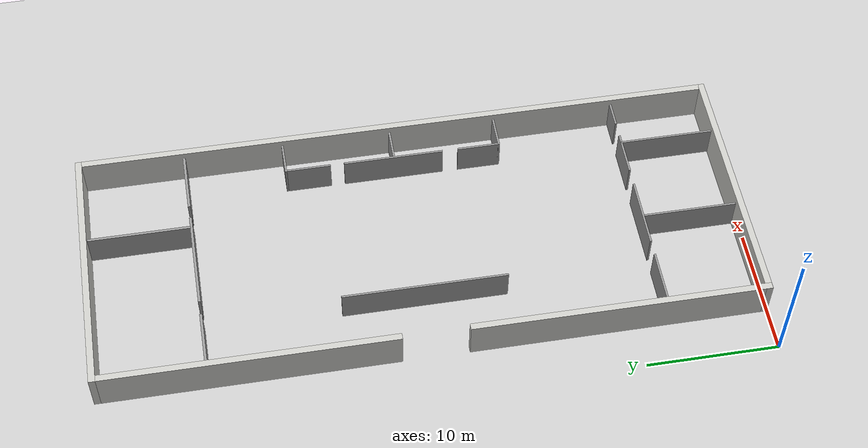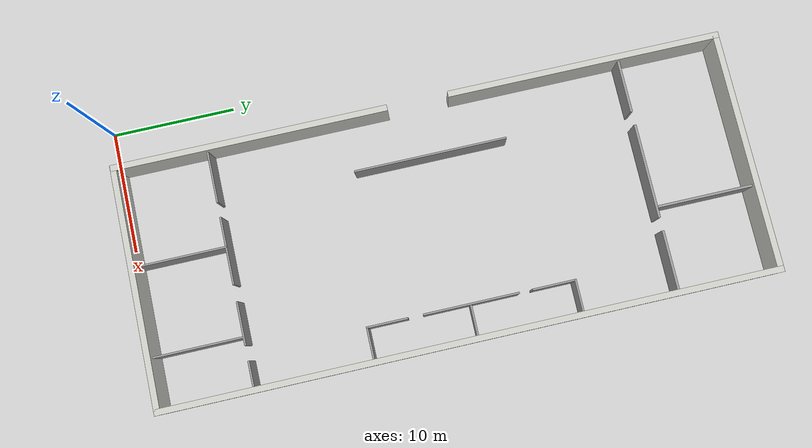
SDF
<sdf version="1.6">
 <world name="default">
  <model name="ground_plane">
   <static>1</static>
   <link name="link">
    <collision name="collision">
     <geometry><plane><normal>0 0 1</normal><size>100 100</size></plane></geometry>
     <surface><friction><ode><mu>100</mu><mu2>50</mu2></ode></friction></surface>
    </collision>
    <visual name="visual">
     <cast_shadows>0</cast_shadows>
     <geometry><plane><normal>0 0 1</normal><size>100 100</size></plane></geometry>
     <material>
      <script><uri>file://media/materials/scripts/gazebo.material</uri><name>Gazebo/Grey</name></script>
     </material>
    </visual>
   </link>
  </model>
  <model name="office_clone">
   <link name="Wall_1">
    <pose>-24.75 -3e-06 0 0 0 -1.5708</pose>
    <inertial>
     <mass>1</mass>
     <inertia><ixx>1</ixx><ixy>0</ixy><ixz>0</ixz><iyy>1</iyy><iyz>0</iyz><izz>1</izz></inertia>
    </inertial>
    <visual name="Wall_1_Visual">
     <pose>0 0 1.25 0 -0 0</pose>
     <geometry><box><size>20 0.5 3.5</size></box></geometry>
     <material>
      <script><uri>file://media/materials/scripts/gazebo.material</uri><name>Gazebo/CeilingTiled</name></script>
      <ambient>1 1 1 1</ambient>
      <shader type="vertex"><normal_map>__default__</normal_map></shader>
      <diffuse>1 1 1 1</diffuse>
      <specular>0 0 0 1</specular>
      <emissive>0 0 0 1</emissive>
     </material>
     <meta><layer>0</layer></meta>
    </visual>
    <collision name="Wall_1_Collision">
     <pose>0 0 1.25 0 -0 0</pose>
     <geometry><box><size>20 0.5 3.5</size></box></geometry>
     <surface>
      <friction>
       <ode><mu>1</mu><mu2>1</mu2><fdir1>0 0 0</fdir1><slip1>0</slip1><slip2>0</slip2></ode>
       <torsional>
        <coefficient>1</coefficient>
        <patch_radius>0</patch_radius>
        <surface_radius>0</surface_radius>
        <use_patch_radius>1</use_patch_radius>
        <ode><slip>0</slip></ode>
       </torsional>
      </friction>
      <bounce><restitution_coefficient>0</restitution_coefficient><threshold>1e+06</threshold></bounce>
      <contact>
       <collide_without_contact>0</collide_without_contact>
       <collide_without_contact_bitmask>1</collide_without_contact_bitmask>
       <collide_bitmask>1</collide_bitmask>
       <ode>
        <soft_cfm>0</soft_cfm>
        <soft_erp>0.2</soft_erp>
        <kp>1e+13</kp>
        <kd>1</kd>
        <max_vel>0.01</max_vel>
        <min_depth>0</min_depth>
       </ode>
       <bullet>
        <split_impulse>1</split_impulse>
        <split_impulse_penetration_threshold>-0.01</split_impulse_penetration_threshold>
        <soft_cfm>0</soft_cfm>
        <soft_erp>0.2</soft_erp>
        <kp>1e+13</kp>
        <kd>1</kd>
       </bullet>
      </contact>
     </surface>
    </collision>
   </link>
   <link name="Wall_11">
    <pose>24.75 3e-06 0 0 0 -1.5708</pose>
    <inertial>
     <mass>1</mass>
     <inertia><ixx>1</ixx><ixy>0</ixy><ixz>0</ixz><iyy>1</iyy><iyz>0</iyz><izz>1</izz></inertia>
    </inertial>
    <visual name="Wall_11_Visual">
     <pose>0 0 1.25 0 -0 0</pose>
     <geometry><box><size>20 0.5 3.5</size></box></geometry>
     <material>
      <script><uri>file://media/materials/scripts/gazebo.material</uri><name>Gazebo/CeilingTiled</name></script>
      <ambient>1 1 1 1</ambient>
      <shader type="vertex"><normal_map>__default__</normal_map></shader>
      <diffuse>1 1 1 1</diffuse>
      <specular>0 0 0 1</specular>
      <emissive>0 0 0 1</emissive>
     </material>
     <meta><layer>0</layer></meta>
    </visual>
    <collision name="Wall_11_Collision">
     <pose>0 0 1.25 0 -0 0</pose>
     <geometry><box><size>20 0.5 3.5</size></box></geometry>
     <surface>
      <friction>
       <ode><mu>1</mu><mu2>1</mu2><fdir1>0 0 0</fdir1><slip1>0</slip1><slip2>0</slip2></ode>
       <torsional>
        <coefficient>1</coefficient>
        <patch_radius>0</patch_radius>
        <surface_radius>0</surface_radius>
        <use_patch_radius>1</use_patch_radius>
        <ode><slip>0</slip></ode>
       </torsional>
      </friction>
      <bounce><restitution_coefficient>0</restitution_coefficient><threshold>1e+06</threshold></bounce>
      <contact>
       <collide_without_contact>0</collide_without_contact>
       <collide_without_contact_bitmask>1</collide_without_contact_bitmask>
       <collide_bitmask>1</collide_bitmask>
       <ode>
        <soft_cfm>0</soft_cfm>
        <soft_erp>0.2</soft_erp>
        <kp>1e+13</kp>
        <kd>1</kd>
        <max_vel>0.01</max_vel>
        <min_depth>0</min_depth>
       </ode>
       <bullet>
        <split_impulse>1</split_impulse>
        <split_impulse_penetration_threshold>-0.01</split_impulse_penetration_threshold>
        <soft_cfm>0</soft_cfm>
        <soft_erp>0.2</soft_erp>
        <kp>1e+13</kp>
        <kd>1</kd>
       </bullet>
      </contact>
     </surface>
    </collision>
   </link>
   <link name="Wall_13">
    <pose>-16.658 7.127 0 0 0 -1.5708</pose>
    <visual name="Wall_13_Visual">
     <pose>0 0 1.25 0 -0 0</pose>
     <geometry><box><size>4.80017 0.2 2.5</size></box></geometry>
     <material>
      <script><uri>file://media/materials/scripts/gazebo.material</uri><name>Gazebo/Grey</name></script>
      <ambient>1 1 1 1</ambient>
     </material>
     <meta><layer>0</layer></meta>
    </visual>
    <collision name="Wall_13_Collision">
     <pose>0 0 1.25 0 -0 0</pose>
     <geometry><box><size>4.80017 0.2 2.5</size></box></geometry>
     <surface>
      <friction>
       <ode><mu>1</mu><mu2>1</mu2><fdir1>0 0 0</fdir1><slip1>0</slip1><slip2>0</slip2></ode>
       <torsional>
        <coefficient>1</coefficient>
        <patch_radius>0</patch_radius>
        <surface_radius>0</surface_radius>
        <use_patch_radius>1</use_patch_radius>
        <ode><slip>0</slip></ode>
       </torsional>
      </friction>
      <bounce><restitution_coefficient>0</restitution_coefficient><threshold>1e+06</threshold></bounce>
      <contact>
       <collide_without_contact>0</collide_without_contact>
       <collide_without_contact_bitmask>1</collide_without_contact_bitmask>
       <collide_bitmask>1</collide_bitmask>
       <ode>
        <soft_cfm>0</soft_cfm>
        <soft_erp>0.2</soft_erp>
        <kp>1e+13</kp>
        <kd>1</kd>
        <max_vel>0.01</max_vel>
        <min_depth>0</min_depth>
       </ode>
       <bullet>
        <split_impulse>1</split_impulse>
        <split_impulse_penetration_threshold>-0.01</split_impulse_penetration_threshold>
        <soft_cfm>0</soft_cfm>
        <soft_erp>0.2</soft_erp>
        <kp>1e+13</kp>
        <kd>1</kd>
       </bullet>
      </contact>
     </surface>
    </collision>
   </link>
   <link name="Wall_15">
    <pose>-16.658 -0.198 0 0 0 -1.5708</pose>
    <visual name="Wall_15_Visual">
     <pose>0 0 1.25 0 -0 0</pose>
     <geometry><box><size>7.75 0.2 2.5</size></box></geometry>
     <material>
      <script><uri>file://media/materials/scripts/gazebo.material</uri><name>Gazebo/Grey</name></script>
      <ambient>1 1 1 1</ambient>
     </material>
     <meta><layer>0</layer></meta>
    </visual>
    <collision name="Wall_15_Collision">
     <pose>0 0 1.25 0 -0 0</pose>
     <geometry><box><size>7.75 0.2 2.5</size></box></geometry>
     <surface>
      <friction>
       <ode><mu>1</mu><mu2>1</mu2><fdir1>0 0 0</fdir1><slip1>0</slip1><slip2>0</slip2></ode>
       <torsional>
        <coefficient>1</coefficient>
        <patch_radius>0</patch_radius>
        <surface_radius>0</surface_radius>
        <use_patch_radius>1</use_patch_radius>
        <ode><slip>0</slip></ode>
       </torsional>
      </friction>
      <bounce><restitution_coefficient>0</restitution_coefficient><threshold>1e+06</threshold></bounce>
      <contact>
       <collide_without_contact>0</collide_without_contact>
       <collide_without_contact_bitmask>1</collide_without_contact_bitmask>
       <collide_bitmask>1</collide_bitmask>
       <ode>
        <soft_cfm>0</soft_cfm>
        <soft_erp>0.2</soft_erp>
        <kp>1e+13</kp>
        <kd>1</kd>
        <max_vel>0.01</max_vel>
        <min_depth>0</min_depth>
       </ode>
       <bullet>
        <split_impulse>1</split_impulse>
        <split_impulse_penetration_threshold>-0.01</split_impulse_penetration_threshold>
        <soft_cfm>0</soft_cfm>
        <soft_erp>0.2</soft_erp>
        <kp>1e+13</kp>
        <kd>1</kd>
       </bullet>
      </contact>
     </surface>
    </collision>
   </link>
   <link name="Wall_17">
    <pose>-16.658 -7.423 0 0 0 -1.5708</pose>
    <visual name="Wall_17_Visual">
     <pose>0 0 1.25 0 -0 0</pose>
     <geometry><box><size>4.5 0.2 2.5</size></box></geometry>
     <material>
      <script><uri>file://media/materials/scripts/gazebo.material</uri><name>Gazebo/Grey</name></script>
      <ambient>1 1 1 1</ambient>
     </material>
     <meta><layer>0</layer></meta>
    </visual>
    <collision name="Wall_17_Collision">
     <pose>0 0 1.25 0 -0 0</pose>
     <geometry><box><size>4.5 0.2 2.5</size></box></geometry>
     <surface>
      <friction>
       <ode><mu>1</mu><mu2>1</mu2><fdir1>0 0 0</fdir1><slip1>0</slip1><slip2>0</slip2></ode>
       <torsional>
        <coefficient>1</coefficient>
        <patch_radius>0</patch_radius>
        <surface_radius>0</surface_radius>
        <use_patch_radius>1</use_patch_radius>
        <ode><slip>0</slip></ode>
       </torsional>
      </friction>
      <bounce><restitution_coefficient>0</restitution_coefficient><threshold>1e+06</threshold></bounce>
      <contact>
       <collide_without_contact>0</collide_without_contact>
       <collide_without_contact_bitmask>1</collide_without_contact_bitmask>
       <collide_bitmask>1</collide_bitmask>
       <ode>
        <soft_cfm>0</soft_cfm>
        <soft_erp>0.2</soft_erp>
        <kp>1e+13</kp>
        <kd>1</kd>
        <max_vel>0.01</max_vel>
        <min_depth>0</min_depth>
       </ode>
       <bullet>
        <split_impulse>1</split_impulse>
        <split_impulse_penetration_threshold>-0.01</split_impulse_penetration_threshold>
        <soft_cfm>0</soft_cfm>
        <soft_erp>0.2</soft_erp>
        <kp>1e+13</kp>
        <kd>1</kd>
       </bullet>
      </contact>
     </surface>
    </collision>
   </link>
   <link name="Wall_19">
    <pose>-20.703 2.792 0 0 -0 0</pose>
    <visual name="Wall_19_Visual">
     <pose>0 0 1.25 0 -0 0</pose>
     <geometry><box><size>8.04985 0.2 2.5</size></box></geometry>
     <material>
      <script><uri>file://media/materials/scripts/gazebo.material</uri><name>Gazebo/Grey</name></script>
      <ambient>1 1 1 1</ambient>
     </material>
     <meta><layer>0</layer></meta>
    </visual>
    <collision name="Wall_19_Collision">
     <pose>0 0 1.25 0 -0 0</pose>
     <geometry><box><size>8.04985 0.2 2.5</size></box></geometry>
     <surface>
      <friction>
       <ode><mu>1</mu><mu2>1</mu2><fdir1>0 0 0</fdir1><slip1>0</slip1><slip2>0</slip2></ode>
       <torsional>
        <coefficient>1</coefficient>
        <patch_radius>0</patch_radius>
        <surface_radius>0</surface_radius>
        <use_patch_radius>1</use_patch_radius>
        <ode><slip>0</slip></ode>
       </torsional>
      </friction>
      <bounce><restitution_coefficient>0</restitution_coefficient><threshold>1e+06</threshold></bounce>
      <contact>
       <collide_without_contact>0</collide_without_contact>
       <collide_without_contact_bitmask>1</collide_without_contact_bitmask>
       <collide_bitmask>1</collide_bitmask>
       <ode>
        <soft_cfm>0</soft_cfm>
        <soft_erp>0.2</soft_erp>
        <kp>1e+13</kp>
        <kd>1</kd>
        <max_vel>0.01</max_vel>
        <min_depth>0</min_depth>
       </ode>
       <bullet>
        <split_impulse>1</split_impulse>
        <split_impulse_penetration_threshold>-0.01</split_impulse_penetration_threshold>
        <soft_cfm>0</soft_cfm>
        <soft_erp>0.2</soft_erp>
        <kp>1e+13</kp>
        <kd>1</kd>
       </bullet>
      </contact>
     </surface>
    </collision>
   </link>
   <link name="Wall_21">
    <pose>17.2839 8.57905 0 0 0 -1.57072</pose>
    <visual name="Wall_21_Visual">
     <pose>0 0 1.25 0 -0 0</pose>
     <geometry><box><size>2.25 0.15 2.5</size></box></geometry>
     <material>
      <script><uri>file://media/materials/scripts/gazebo.material</uri><name>Gazebo/Grey</name></script>
      <ambient>1 1 1 1</ambient>
     </material>
     <meta><layer>0</layer></meta>
    </visual>
    <collision name="Wall_21_Collision">
     <pose>0 0 1.25 0 -0 0</pose>
     <geometry><box><size>2.25 0.15 2.5</size></box></geometry>
     <surface>
      <friction>
       <ode><mu>1</mu><mu2>1</mu2><fdir1>0 0 0</fdir1><slip1>0</slip1><slip2>0</slip2></ode>
       <torsional>
        <coefficient>1</coefficient>
        <patch_radius>0</patch_radius>
        <surface_radius>0</surface_radius>
        <use_patch_radius>1</use_patch_radius>
        <ode><slip>0</slip></ode>
       </torsional>
      </friction>
      <bounce><restitution_coefficient>0</restitution_coefficient><threshold>1e+06</threshold></bounce>
      <contact>
       <collide_without_contact>0</collide_without_contact>
       <collide_without_contact_bitmask>1</collide_without_contact_bitmask>
       <collide_bitmask>1</collide_bitmask>
       <ode>
        <soft_cfm>0</soft_cfm>
        <soft_erp>0.2</soft_erp>
        <kp>1e+13</kp>
        <kd>1</kd>
        <max_vel>0.01</max_vel>
        <min_depth>0</min_depth>
       </ode>
       <bullet>
        <split_impulse>1</split_impulse>
        <split_impulse_penetration_threshold>-0.01</split_impulse_penetration_threshold>
        <soft_cfm>0</soft_cfm>
        <soft_erp>0.2</soft_erp>
        <kp>1e+13</kp>
        <kd>1</kd>
       </bullet>
      </contact>
     </surface>
    </collision>
   </link>
   <link name="Wall_23">
    <pose>17.2838 4.5041 0 0 0 -1.5708</pose>
    <visual name="Wall_23_Visual">
     <pose>0 0 1.25 0 -0 0</pose>
     <geometry><box><size>3.5 0.15 2.5</size></box></geometry>
     <material>
      <script><uri>file://media/materials/scripts/gazebo.material</uri><name>Gazebo/Grey</name></script>
      <ambient>1 1 1 1</ambient>
     </material>
     <meta><layer>0</layer></meta>
    </visual>
    <collision name="Wall_23_Collision">
     <pose>0 0 1.25 0 -0 0</pose>
     <geometry><box><size>3.5 0.15 2.5</size></box></geometry>
     <surface>
      <friction>
       <ode><mu>1</mu><mu2>1</mu2><fdir1>0 0 0</fdir1><slip1>0</slip1><slip2>0</slip2></ode>
       <torsional>
        <coefficient>1</coefficient>
        <patch_radius>0</patch_radius>
        <surface_radius>0</surface_radius>
        <use_patch_radius>1</use_patch_radius>
        <ode><slip>0</slip></ode>
       </torsional>
      </friction>
      <bounce><restitution_coefficient>0</restitution_coefficient><threshold>1e+06</threshold></bounce>
      <contact>
       <collide_without_contact>0</collide_without_contact>
       <collide_without_contact_bitmask>1</collide_without_contact_bitmask>
       <collide_bitmask>1</collide_bitmask>
       <ode>
        <soft_cfm>0</soft_cfm>
        <soft_erp>0.2</soft_erp>
        <kp>1e+13</kp>
        <kd>1</kd>
        <max_vel>0.01</max_vel>
        <min_depth>0</min_depth>
       </ode>
       <bullet>
        <split_impulse>1</split_impulse>
        <split_impulse_penetration_threshold>-0.01</split_impulse_penetration_threshold>
        <soft_cfm>0</soft_cfm>
        <soft_erp>0.2</soft_erp>
        <kp>1e+13</kp>
        <kd>1</kd>
       </bullet>
      </contact>
     </surface>
    </collision>
   </link>
   <link name="Wall_25">
    <pose>17.2838 -1.3459 0 0 0 -1.5708</pose>
    <visual name="Wall_25_Visual">
     <pose>0 0 1.25 0 -0 0</pose>
     <geometry><box><size>5.5 0.15 2.5</size></box></geometry>
     <material>
      <script><uri>file://media/materials/scripts/gazebo.material</uri><name>Gazebo/Grey</name></script>
      <ambient>1 1 1 1</ambient>
     </material>
     <meta><layer>0</layer></meta>
    </visual>
    <collision name="Wall_25_Collision">
     <pose>0 0 1.25 0 -0 0</pose>
     <geometry><box><size>5.5 0.15 2.5</size></box></geometry>
     <surface>
      <friction>
       <ode><mu>1</mu><mu2>1</mu2><fdir1>0 0 0</fdir1><slip1>0</slip1><slip2>0</slip2></ode>
       <torsional>
        <coefficient>1</coefficient>
        <patch_radius>0</patch_radius>
        <surface_radius>0</surface_radius>
        <use_patch_radius>1</use_patch_radius>
        <ode><slip>0</slip></ode>
       </torsional>
      </friction>
      <bounce><restitution_coefficient>0</restitution_coefficient><threshold>1e+06</threshold></bounce>
      <contact>
       <collide_without_contact>0</collide_without_contact>
       <collide_without_contact_bitmask>1</collide_without_contact_bitmask>
       <collide_bitmask>1</collide_bitmask>
       <ode>
        <soft_cfm>0</soft_cfm>
        <soft_erp>0.2</soft_erp>
        <kp>1e+13</kp>
        <kd>1</kd>
        <max_vel>0.01</max_vel>
        <min_depth>0</min_depth>
       </ode>
       <bullet>
        <split_impulse>1</split_impulse>
        <split_impulse_penetration_threshold>-0.01</split_impulse_penetration_threshold>
        <soft_cfm>0</soft_cfm>
        <soft_erp>0.2</soft_erp>
        <kp>1e+13</kp>
        <kd>1</kd>
       </bullet>
      </contact>
     </surface>
    </collision>
   </link>
   <link name="Wall_27">
    <pose>17.2838 -7.4709 0 0 0 -1.5708</pose>
    <visual name="Wall_27_Visual">
     <pose>0 0 1.25 0 -0 0</pose>
     <geometry><box><size>4.35 0.15 2.5</size></box></geometry>
     <material>
      <script><uri>file://media/materials/scripts/gazebo.material</uri><name>Gazebo/Grey</name></script>
      <ambient>1 1 1 1</ambient>
     </material>
     <meta><layer>0</layer></meta>
    </visual>
    <collision name="Wall_27_Collision">
     <pose>0 0 1.25 0 -0 0</pose>
     <geometry><box><size>4.35 0.15 2.5</size></box></geometry>
     <surface>
      <friction>
       <ode><mu>1</mu><mu2>1</mu2><fdir1>0 0 0</fdir1><slip1>0</slip1><slip2>0</slip2></ode>
       <torsional>
        <coefficient>1</coefficient>
        <patch_radius>0</patch_radius>
        <surface_radius>0</surface_radius>
        <use_patch_radius>1</use_patch_radius>
        <ode><slip>0</slip></ode>
       </torsional>
      </friction>
      <bounce><restitution_coefficient>0</restitution_coefficient><threshold>1e+06</threshold></bounce>
      <contact>
       <collide_without_contact>0</collide_without_contact>
       <collide_without_contact_bitmask>1</collide_without_contact_bitmask>
       <collide_bitmask>1</collide_bitmask>
       <ode>
        <soft_cfm>0</soft_cfm>
        <soft_erp>0.2</soft_erp>
        <kp>1e+13</kp>
        <kd>1</kd>
        <max_vel>0.01</max_vel>
        <min_depth>0</min_depth>
       </ode>
       <bullet>
        <split_impulse>1</split_impulse>
        <split_impulse_penetration_threshold>-0.01</split_impulse_penetration_threshold>
        <soft_cfm>0</soft_cfm>
        <soft_erp>0.2</soft_erp>
        <kp>1e+13</kp>
        <kd>1</kd>
       </bullet>
      </contact>
     </surface>
    </collision>
   </link>
   <link name="Wall_29">
    <pose>20.9993 5.58355 0 0 -0 0</pose>
    <visual name="Wall_29_Visual">
     <pose>0 0 1.25 0 -0 0</pose>
     <geometry><box><size>7.5 0.15 2.5</size></box></geometry>
     <material>
      <script><uri>file://media/materials/scripts/gazebo.material</uri><name>Gazebo/Grey</name></script>
      <ambient>1 1 1 1</ambient>
     </material>
     <meta><layer>0</layer></meta>
    </visual>
    <collision name="Wall_29_Collision">
     <pose>0 0 1.25 0 -0 0</pose>
     <geometry><box><size>7.5 0.15 2.5</size></box></geometry>
     <surface>
      <friction>
       <ode><mu>1</mu><mu2>1</mu2><fdir1>0 0 0</fdir1><slip1>0</slip1><slip2>0</slip2></ode>
       <torsional>
        <coefficient>1</coefficient>
        <patch_radius>0</patch_radius>
        <surface_radius>0</surface_radius>
        <use_patch_radius>1</use_patch_radius>
        <ode><slip>0</slip></ode>
       </torsional>
      </friction>
      <bounce><restitution_coefficient>0</restitution_coefficient><threshold>1e+06</threshold></bounce>
      <contact>
       <collide_without_contact>0</collide_without_contact>
       <collide_without_contact_bitmask>1</collide_without_contact_bitmask>
       <collide_bitmask>1</collide_bitmask>
       <ode>
        <soft_cfm>0</soft_cfm>
        <soft_erp>0.2</soft_erp>
        <kp>1e+13</kp>
        <kd>1</kd>
        <max_vel>0.01</max_vel>
        <min_depth>0</min_depth>
       </ode>
       <bullet>
        <split_impulse>1</split_impulse>
        <split_impulse_penetration_threshold>-0.01</split_impulse_penetration_threshold>
        <soft_cfm>0</soft_cfm>
        <soft_erp>0.2</soft_erp>
        <kp>1e+13</kp>
        <kd>1</kd>
       </bullet>
      </contact>
     </surface>
    </collision>
   </link>
   <link name="Wall_3">
    <pose>-1e-06 9.75 0 0 -0 0</pose>
    <inertial>
     <mass>1</mass>
     <inertia><ixx>1</ixx><ixy>0</ixy><ixz>0</ixz><iyy>1</iyy><iyz>0</iyz><izz>1</izz></inertia>
    </inertial>
    <visual name="Wall_3_Visual">
     <pose>0 0 1.25 0 -0 0</pose>
     <geometry><box><size>50 0.5 3.5</size></box></geometry>
     <material>
      <script><uri>file://media/materials/scripts/gazebo.material</uri><name>Gazebo/CeilingTiled</name></script>
      <ambient>1 1 1 1</ambient>
      <shader type="vertex"><normal_map>__default__</normal_map></shader>
      <diffuse>1 1 1 1</diffuse>
      <specular>0 0 0 1</specular>
      <emissive>0 0 0 1</emissive>
     </material>
     <meta><layer>0</layer></meta>
    </visual>
    <collision name="Wall_3_Collision">
     <pose>0 0 1.25 0 -0 0</pose>
     <geometry><box><size>50 0.5 3.5</size></box></geometry>
     <surface>
      <friction>
       <ode><mu>1</mu><mu2>1</mu2><fdir1>0 0 0</fdir1><slip1>0</slip1><slip2>0</slip2></ode>
       <torsional>
        <coefficient>1</coefficient>
        <patch_radius>0</patch_radius>
        <surface_radius>0</surface_radius>
        <use_patch_radius>1</use_patch_radius>
        <ode><slip>0</slip></ode>
       </torsional>
      </friction>
      <bounce><restitution_coefficient>0</restitution_coefficient><threshold>1e+06</threshold></bounce>
      <contact>
       <collide_without_contact>0</collide_without_contact>
       <collide_without_contact_bitmask>1</collide_without_contact_bitmask>
       <collide_bitmask>1</collide_bitmask>
       <ode>
        <soft_cfm>0</soft_cfm>
        <soft_erp>0.2</soft_erp>
        <kp>1e+13</kp>
        <kd>1</kd>
        <max_vel>0.01</max_vel>
        <min_depth>0</min_depth>
       </ode>
       <bullet>
        <split_impulse>1</split_impulse>
        <split_impulse_penetration_threshold>-0.01</split_impulse_penetration_threshold>
        <soft_cfm>0</soft_cfm>
        <soft_erp>0.2</soft_erp>
        <kp>1e+13</kp>
        <kd>1</kd>
       </bullet>
      </contact>
     </surface>
    </collision>
   </link>
   <link name="Wall_31">
    <pose>20.9993 -1.658 0 0 -0 0</pose>
    <visual name="Wall_31_Visual">
     <pose>0 0 1.25 0 -0 0</pose>
     <geometry><box><size>7.5 0.15 2.5</size></box></geometry>
     <material>
      <script><uri>file://media/materials/scripts/gazebo.material</uri><name>Gazebo/Grey</name></script>
      <ambient>1 1 1 1</ambient>
     </material>
     <meta><layer>0</layer></meta>
    </visual>
    <collision name="Wall_31_Collision">
     <pose>0 0 1.25 0 -0 0</pose>
     <geometry><box><size>7.5 0.15 2.5</size></box></geometry>
     <surface>
      <friction>
       <ode><mu>1</mu><mu2>1</mu2><fdir1>0 0 0</fdir1><slip1>0</slip1><slip2>0</slip2></ode>
       <torsional>
        <coefficient>1</coefficient>
        <patch_radius>0</patch_radius>
        <surface_radius>0</surface_radius>
        <use_patch_radius>1</use_patch_radius>
        <ode><slip>0</slip></ode>
       </torsional>
      </friction>
      <bounce><restitution_coefficient>0</restitution_coefficient><threshold>1e+06</threshold></bounce>
      <contact>
       <collide_without_contact>0</collide_without_contact>
       <collide_without_contact_bitmask>1</collide_without_contact_bitmask>
       <collide_bitmask>1</collide_bitmask>
       <ode>
        <soft_cfm>0</soft_cfm>
        <soft_erp>0.2</soft_erp>
        <kp>1e+13</kp>
        <kd>1</kd>
        <max_vel>0.01</max_vel>
        <min_depth>0</min_depth>
       </ode>
       <bullet>
        <split_impulse>1</split_impulse>
        <split_impulse_penetration_threshold>-0.01</split_impulse_penetration_threshold>
        <soft_cfm>0</soft_cfm>
        <soft_erp>0.2</soft_erp>
        <kp>1e+13</kp>
        <kd>1</kd>
       </bullet>
      </contact>
     </surface>
    </collision>
   </link>
   <link name="Wall_34">
    <pose>-8.97184 8.28865 0 0 0 -1.5708</pose>
    <visual name="Wall_34_Visual">
     <pose>0 0 1.25 0 -0 0</pose>
     <geometry><box><size>2.75032 0.15 2.5</size></box></geometry>
     <material>
      <script><uri>file://media/materials/scripts/gazebo.material</uri><name>Gazebo/Grey</name></script>
      <ambient>1 1 1 1</ambient>
     </material>
     <meta><layer>0</layer></meta>
    </visual>
    <collision name="Wall_34_Collision">
     <pose>0 0 1.25 0 -0 0</pose>
     <geometry><box><size>2.75032 0.15 2.5</size></box></geometry>
     <surface>
      <friction>
       <ode><mu>1</mu><mu2>1</mu2><fdir1>0 0 0</fdir1><slip1>0</slip1><slip2>0</slip2></ode>
       <torsional>
        <coefficient>1</coefficient>
        <patch_radius>0</patch_radius>
        <surface_radius>0</surface_radius>
        <use_patch_radius>1</use_patch_radius>
        <ode><slip>0</slip></ode>
       </torsional>
      </friction>
      <bounce><restitution_coefficient>0</restitution_coefficient><threshold>1e+06</threshold></bounce>
      <contact>
       <collide_without_contact>0</collide_without_contact>
       <collide_without_contact_bitmask>1</collide_without_contact_bitmask>
       <collide_bitmask>1</collide_bitmask>
       <ode>
        <soft_cfm>0</soft_cfm>
        <soft_erp>0.2</soft_erp>
        <kp>1e+13</kp>
        <kd>1</kd>
        <max_vel>0.01</max_vel>
        <min_depth>0</min_depth>
       </ode>
       <bullet>
        <split_impulse>1</split_impulse>
        <split_impulse_penetration_threshold>-0.01</split_impulse_penetration_threshold>
        <soft_cfm>0</soft_cfm>
        <soft_erp>0.2</soft_erp>
        <kp>1e+13</kp>
        <kd>1</kd>
       </bullet>
      </contact>
     </surface>
    </collision>
   </link>
   <link name="Wall_35">
    <pose>-7.25638 6.98865 0 0 -0 0</pose>
    <visual name="Wall_35_Visual">
     <pose>0 0 1.25 0 -0 0</pose>
     <geometry><box><size>3.5 0.15 2.5</size></box></geometry>
     <material>
      <script><uri>file://media/materials/scripts/gazebo.material</uri><name>Gazebo/Grey</name></script>
      <ambient>1 1 1 1</ambient>
     </material>
     <meta><layer>0</layer></meta>
    </visual>
    <collision name="Wall_35_Collision">
     <pose>0 0 1.25 0 -0 0</pose>
     <geometry><box><size>3.5 0.15 2.5</size></box></geometry>
     <surface>
      <friction>
       <ode><mu>1</mu><mu2>1</mu2><fdir1>0 0 0</fdir1><slip1>0</slip1><slip2>0</slip2></ode>
       <torsional>
        <coefficient>1</coefficient>
        <patch_radius>0</patch_radius>
        <surface_radius>0</surface_radius>
        <use_patch_radius>1</use_patch_radius>
        <ode><slip>0</slip></ode>
       </torsional>
      </friction>
      <bounce><restitution_coefficient>0</restitution_coefficient><threshold>1e+06</threshold></bounce>
      <contact>
       <collide_without_contact>0</collide_without_contact>
       <collide_without_contact_bitmask>1</collide_without_contact_bitmask>
       <collide_bitmask>1</collide_bitmask>
       <ode>
        <soft_cfm>0</soft_cfm>
        <soft_erp>0.2</soft_erp>
        <kp>1e+13</kp>
        <kd>1</kd>
        <max_vel>0.01</max_vel>
        <min_depth>0</min_depth>
       </ode>
       <bullet>
        <split_impulse>1</split_impulse>
        <split_impulse_penetration_threshold>-0.01</split_impulse_penetration_threshold>
        <soft_cfm>0</soft_cfm>
        <soft_erp>0.2</soft_erp>
        <kp>1e+13</kp>
        <kd>1</kd>
       </bullet>
      </contact>
     </surface>
    </collision>
   </link>
   <link name="Wall_37">
    <pose>-0.572 6.989 0 0 -0 0</pose>
    <visual name="Wall_37_Visual">
     <pose>0 0 1.25 0 -0 0</pose>
     <geometry><box><size>7.75 0.15 2.5</size></box></geometry>
     <material>
      <script><uri>file://media/materials/scripts/gazebo.material</uri><name>Gazebo/Grey</name></script>
      <ambient>1 1 1 1</ambient>
     </material>
     <meta><layer>0</layer></meta>
    </visual>
    <collision name="Wall_37_Collision">
     <pose>0 0 1.25 0 -0 0</pose>
     <geometry><box><size>7.75 0.15 2.5</size></box></geometry>
     <surface>
      <friction>
       <ode><mu>1</mu><mu2>1</mu2><fdir1>0 0 0</fdir1><slip1>0</slip1><slip2>0</slip2></ode>
       <torsional>
        <coefficient>1</coefficient>
        <patch_radius>0</patch_radius>
        <surface_radius>0</surface_radius>
        <use_patch_radius>1</use_patch_radius>
        <ode><slip>0</slip></ode>
       </torsional>
      </friction>
      <bounce><restitution_coefficient>0</restitution_coefficient><threshold>1e+06</threshold></bounce>
      <contact>
       <collide_without_contact>0</collide_without_contact>
       <collide_without_contact_bitmask>1</collide_without_contact_bitmask>
       <collide_bitmask>1</collide_bitmask>
       <ode>
        <soft_cfm>0</soft_cfm>
        <soft_erp>0.2</soft_erp>
        <kp>1e+13</kp>
        <kd>1</kd>
        <max_vel>0.01</max_vel>
        <min_depth>0</min_depth>
       </ode>
       <bullet>
        <split_impulse>1</split_impulse>
        <split_impulse_penetration_threshold>-0.01</split_impulse_penetration_threshold>
        <soft_cfm>0</soft_cfm>
        <soft_erp>0.2</soft_erp>
        <kp>1e+13</kp>
        <kd>1</kd>
       </bullet>
      </contact>
     </surface>
    </collision>
   </link>
   <link name="Wall_39">
    <pose>6.17808 6.98882 0 0 0 -0.00011</pose>
    <visual name="Wall_39_Visual">
     <pose>0 0 1.25 0 -0 0</pose>
     <geometry><box><size>3.35 0.15 2.5</size></box></geometry>
     <material>
      <script><uri>file://media/materials/scripts/gazebo.material</uri><name>Gazebo/Grey</name></script>
      <ambient>1 1 1 1</ambient>
     </material>
     <meta><layer>0</layer></meta>
    </visual>
    <collision name="Wall_39_Collision">
     <pose>0 0 1.25 0 -0 0</pose>
     <geometry><box><size>3.35 0.15 2.5</size></box></geometry>
     <surface>
      <friction>
       <ode><mu>1</mu><mu2>1</mu2><fdir1>0 0 0</fdir1><slip1>0</slip1><slip2>0</slip2></ode>
       <torsional>
        <coefficient>1</coefficient>
        <patch_radius>0</patch_radius>
        <surface_radius>0</surface_radius>
        <use_patch_radius>1</use_patch_radius>
        <ode><slip>0</slip></ode>
       </torsional>
      </friction>
      <bounce><restitution_coefficient>0</restitution_coefficient><threshold>1e+06</threshold></bounce>
      <contact>
       <collide_without_contact>0</collide_without_contact>
       <collide_without_contact_bitmask>1</collide_without_contact_bitmask>
       <collide_bitmask>1</collide_bitmask>
       <ode>
        <soft_cfm>0</soft_cfm>
        <soft_erp>0.2</soft_erp>
        <kp>1e+13</kp>
        <kd>1</kd>
        <max_vel>0.01</max_vel>
        <min_depth>0</min_depth>
       </ode>
       <bullet>
        <split_impulse>1</split_impulse>
        <split_impulse_penetration_threshold>-0.01</split_impulse_penetration_threshold>
        <soft_cfm>0</soft_cfm>
        <soft_erp>0.2</soft_erp>
        <kp>1e+13</kp>
        <kd>1</kd>
       </bullet>
      </contact>
     </surface>
    </collision>
   </link>
   <link name="Wall_40">
    <pose>7.77816 8.28865 0 0 -0 1.5708</pose>
    <visual name="Wall_40_Visual">
     <pose>0 0 1.25 0 -0 0</pose>
     <geometry><box><size>2.75 0.15 2.5</size></box></geometry>
     <material>
      <script><uri>file://media/materials/scripts/gazebo.material</uri><name>Gazebo/Grey</name></script>
      <ambient>1 1 1 1</ambient>
     </material>
     <meta><layer>0</layer></meta>
    </visual>
    <collision name="Wall_40_Collision">
     <pose>0 0 1.25 0 -0 0</pose>
     <geometry><box><size>2.75 0.15 2.5</size></box></geometry>
     <surface>
      <friction>
       <ode><mu>1</mu><mu2>1</mu2><fdir1>0 0 0</fdir1><slip1>0</slip1><slip2>0</slip2></ode>
       <torsional>
        <coefficient>1</coefficient>
        <patch_radius>0</patch_radius>
        <surface_radius>0</surface_radius>
        <use_patch_radius>1</use_patch_radius>
        <ode><slip>0</slip></ode>
       </torsional>
      </friction>
      <bounce><restitution_coefficient>0</restitution_coefficient><threshold>1e+06</threshold></bounce>
      <contact>
       <collide_without_contact>0</collide_without_contact>
       <collide_without_contact_bitmask>1</collide_without_contact_bitmask>
       <collide_bitmask>1</collide_bitmask>
       <ode>
        <soft_cfm>0</soft_cfm>
        <soft_erp>0.2</soft_erp>
        <kp>1e+13</kp>
        <kd>1</kd>
        <max_vel>0.01</max_vel>
        <min_depth>0</min_depth>
       </ode>
       <bullet>
        <split_impulse>1</split_impulse>
        <split_impulse_penetration_threshold>-0.01</split_impulse_penetration_threshold>
        <soft_cfm>0</soft_cfm>
        <soft_erp>0.2</soft_erp>
        <kp>1e+13</kp>
        <kd>1</kd>
       </bullet>
      </contact>
     </surface>
    </collision>
   </link>
   <link name="Wall_42">
    <pose>-0.516625 8.36956 0 0 0 -1.5708</pose>
    <visual name="Wall_42_Visual">
     <pose>0 0 1.25 0 -0 0</pose>
     <geometry><box><size>2.75 0.15 2.5</size></box></geometry>
     <material>
      <script><uri>file://media/materials/scripts/gazebo.material</uri><name>Gazebo/Grey</name></script>
      <ambient>1 1 1 1</ambient>
     </material>
     <meta><layer>0</layer></meta>
    </visual>
    <collision name="Wall_42_Collision">
     <pose>0 0 1.25 0 -0 0</pose>
     <geometry><box><size>2.75 0.15 2.5</size></box></geometry>
     <surface>
      <friction>
       <ode><mu>1</mu><mu2>1</mu2><fdir1>0 0 0</fdir1><slip1>0</slip1><slip2>0</slip2></ode>
       <torsional>
        <coefficient>1</coefficient>
        <patch_radius>0</patch_radius>
        <surface_radius>0</surface_radius>
        <use_patch_radius>1</use_patch_radius>
        <ode><slip>0</slip></ode>
       </torsional>
      </friction>
      <bounce><restitution_coefficient>0</restitution_coefficient><threshold>1e+06</threshold></bounce>
      <contact>
       <collide_without_contact>0</collide_without_contact>
       <collide_without_contact_bitmask>1</collide_without_contact_bitmask>
       <collide_bitmask>1</collide_bitmask>
       <ode>
        <soft_cfm>0</soft_cfm>
        <soft_erp>0.2</soft_erp>
        <kp>1e+13</kp>
        <kd>1</kd>
        <max_vel>0.01</max_vel>
        <min_depth>0</min_depth>
       </ode>
       <bullet>
        <split_impulse>1</split_impulse>
        <split_impulse_penetration_threshold>-0.01</split_impulse_penetration_threshold>
        <soft_cfm>0</soft_cfm>
        <soft_erp>0.2</soft_erp>
        <kp>1e+13</kp>
        <kd>1</kd>
       </bullet>
      </contact>
     </surface>
    </collision>
   </link>
   <link name="Wall_44">
    <pose>-0.086317 -5.33946 0 0 -0 0</pose>
    <visual name="Wall_44_Visual">
     <pose>0 0 1.25 0 -0 0</pose>
     <geometry><box><size>12.5 0.15 2.5</size></box></geometry>
     <material>
      <script><uri>file://media/materials/scripts/gazebo.material</uri><name>Gazebo/Grey</name></script>
      <ambient>1 1 1 1</ambient>
     </material>
     <meta><layer>0</layer></meta>
    </visual>
    <collision name="Wall_44_Collision">
     <pose>0 0 1.25 0 -0 0</pose>
     <geometry><box><size>12.5 0.15 2.5</size></box></geometry>
     <surface>
      <friction>
       <ode><mu>1</mu><mu2>1</mu2><fdir1>0 0 0</fdir1><slip1>0</slip1><slip2>0</slip2></ode>
       <torsional>
        <coefficient>1</coefficient>
        <patch_radius>0</patch_radius>
        <surface_radius>0</surface_radius>
        <use_patch_radius>1</use_patch_radius>
        <ode><slip>0</slip></ode>
       </torsional>
      </friction>
      <bounce><restitution_coefficient>0</restitution_coefficient><threshold>1e+06</threshold></bounce>
      <contact>
       <collide_without_contact>0</collide_without_contact>
       <collide_without_contact_bitmask>1</collide_without_contact_bitmask>
       <collide_bitmask>1</collide_bitmask>
       <ode>
        <soft_cfm>0</soft_cfm>
        <soft_erp>0.2</soft_erp>
        <kp>1e+13</kp>
        <kd>1</kd>
        <max_vel>0.01</max_vel>
        <min_depth>0</min_depth>
       </ode>
       <bullet>
        <split_impulse>1</split_impulse>
        <split_impulse_penetration_threshold>-0.01</split_impulse_penetration_threshold>
        <soft_cfm>0</soft_cfm>
        <soft_erp>0.2</soft_erp>
        <kp>1e+13</kp>
        <kd>1</kd>
       </bullet>
      </contact>
     </surface>
    </collision>
   </link>
   <link name="Wall_7">
    <pose>-13.75 -9.75 0 0 -0 0</pose>
    <inertial>
     <mass>1</mass>
     <inertia><ixx>1</ixx><ixy>0</ixy><ixz>0</ixz><iyy>1</iyy><iyz>0</iyz><izz>1</izz></inertia>
    </inertial>
    <visual name="Wall_7_Visual">
     <pose>0 0 1.25 0 -0 0</pose>
     <geometry><box><size>22.5 0.5 3.5</size></box></geometry>
     <material>
      <script><uri>file://media/materials/scripts/gazebo.material</uri><name>Gazebo/CeilingTiled</name></script>
      <ambient>1 1 1 1</ambient>
      <shader type="vertex"><normal_map>__default__</normal_map></shader>
      <diffuse>1 1 1 1</diffuse>
      <specular>0 0 0 1</specular>
      <emissive>0 0 0 1</emissive>
     </material>
     <meta><layer>0</layer></meta>
    </visual>
    <collision name="Wall_7_Collision">
     <pose>0 0 1.25 0 -0 0</pose>
     <geometry><box><size>22.5 0.5 3.5</size></box></geometry>
     <surface>
      <friction>
       <ode><mu>1</mu><mu2>1</mu2><fdir1>0 0 0</fdir1><slip1>0</slip1><slip2>0</slip2></ode>
       <torsional>
        <coefficient>1</coefficient>
        <patch_radius>0</patch_radius>
        <surface_radius>0</surface_radius>
        <use_patch_radius>1</use_patch_radius>
        <ode><slip>0</slip></ode>
       </torsional>
      </friction>
      <bounce><restitution_coefficient>0</restitution_coefficient><threshold>1e+06</threshold></bounce>
      <contact>
       <collide_without_contact>0</collide_without_contact>
       <collide_without_contact_bitmask>1</collide_without_contact_bitmask>
       <collide_bitmask>1</collide_bitmask>
       <ode>
        <soft_cfm>0</soft_cfm>
        <soft_erp>0.2</soft_erp>
        <kp>1e+13</kp>
        <kd>1</kd>
        <max_vel>0.01</max_vel>
        <min_depth>0</min_depth>
       </ode>
       <bullet>
        <split_impulse>1</split_impulse>
        <split_impulse_penetration_threshold>-0.01</split_impulse_penetration_threshold>
        <soft_cfm>0</soft_cfm>
        <soft_erp>0.2</soft_erp>
        <kp>1e+13</kp>
        <kd>1</kd>
       </bullet>
      </contact>
     </surface>
    </collision>
   </link>
   <link name="Wall_9">
    <pose>13.7296 -9.74954 0 0 -0 0</pose>
    <inertial>
     <mass>1</mass>
     <inertia><ixx>1</ixx><ixy>0</ixy><ixz>0</ixz><iyy>1</iyy><iyz>0</iyz><izz>1</izz></inertia>
    </inertial>
    <visual name="Wall_9_Visual">
     <pose>0 0 1.25 0 -0 0</pose>
     <geometry><box><size>22.5 0.5 3.5</size></box></geometry>
     <material>
      <script><uri>file://media/materials/scripts/gazebo.material</uri><name>Gazebo/CeilingTiled</name></script>
      <ambient>1 1 1 1</ambient>
      <shader type="vertex"><normal_map>__default__</normal_map></shader>
      <diffuse>1 1 1 1</diffuse>
      <specular>0 0 0 1</specular>
      <emissive>0 0 0 1</emissive>
     </material>
     <meta><layer>0</layer></meta>
    </visual>
    <collision name="Wall_9_Collision">
     <pose>0 0 1.25 0 -0 0</pose>
     <geometry><box><size>22.5 0.5 3.5</size></box></geometry>
     <surface>
      <friction>
       <ode><mu>1</mu><mu2>1</mu2><fdir1>0 0 0</fdir1><slip1>0</slip1><slip2>0</slip2></ode>
       <torsional>
        <coefficient>1</coefficient>
        <patch_radius>0</patch_radius>
        <surface_radius>0</surface_radius>
        <use_patch_radius>1</use_patch_radius>
        <ode><slip>0</slip></ode>
       </torsional>
      </friction>
      <bounce><restitution_coefficient>0</restitution_coefficient><threshold>1e+06</threshold></bounce>
      <contact>
       <collide_without_contact>0</collide_without_contact>
       <collide_without_contact_bitmask>1</collide_without_contact_bitmask>
       <collide_bitmask>1</collide_bitmask>
       <ode>
        <soft_cfm>0</soft_cfm>
        <soft_erp>0.2</soft_erp>
        <kp>1e+13</kp>
        <kd>1</kd>
        <max_vel>0.01</max_vel>
        <min_depth>0</min_depth>
       </ode>
       <bullet>
        <split_impulse>1</split_impulse>
        <split_impulse_penetration_threshold>-0.01</split_impulse_penetration_threshold>
        <soft_cfm>0</soft_cfm>
        <soft_erp>0.2</soft_erp>
        <kp>1e+13</kp>
        <kd>1</kd>
       </bullet>
      </contact>
     </surface>
    </collision>
   </link>
   <static>1</static>
   <pose>13.25 25 0 0 0 -1.5708</pose>
  </model>
 </world>
</sdf>
